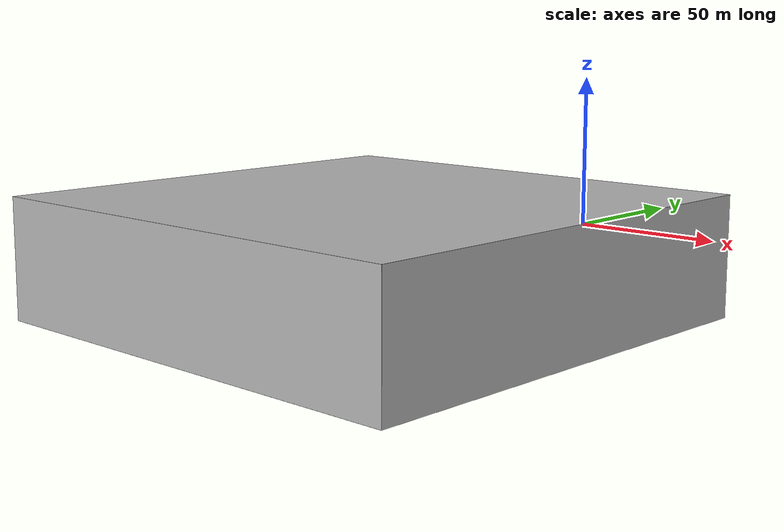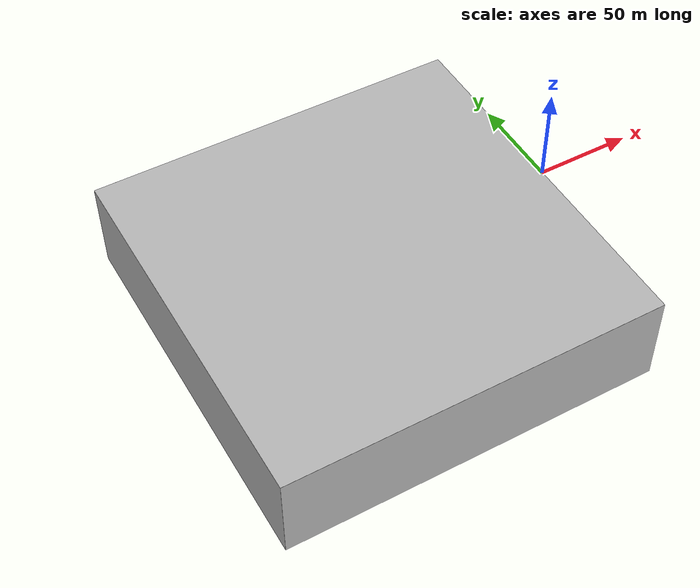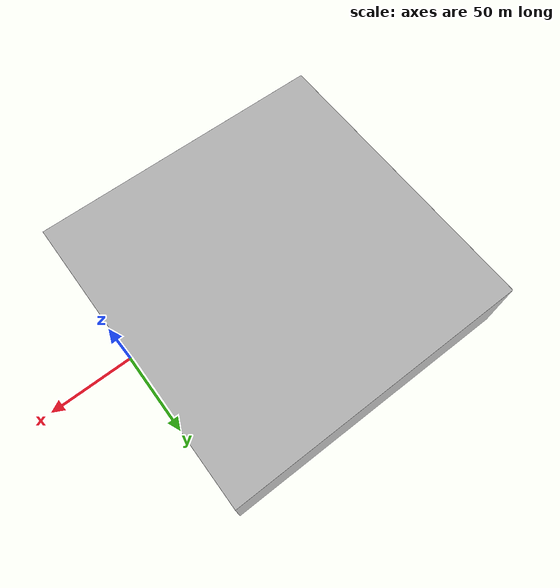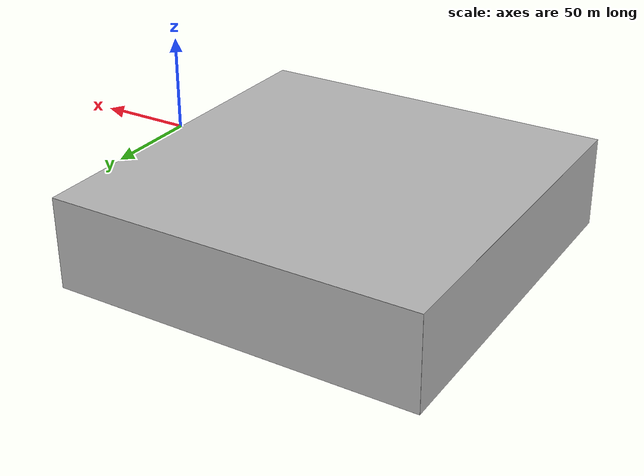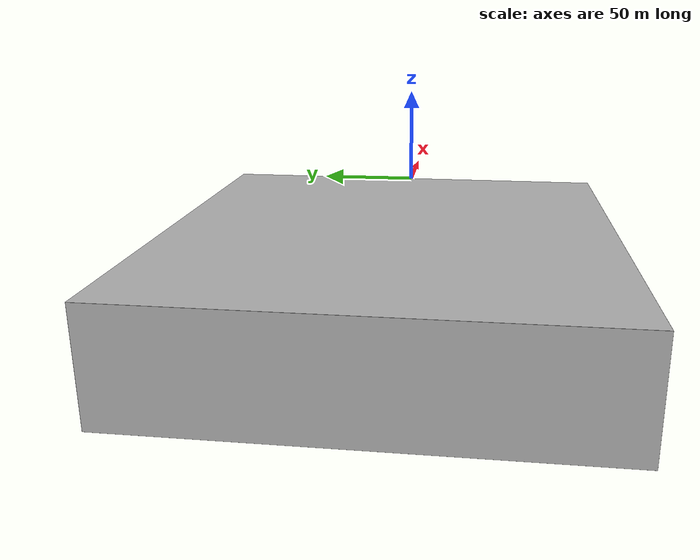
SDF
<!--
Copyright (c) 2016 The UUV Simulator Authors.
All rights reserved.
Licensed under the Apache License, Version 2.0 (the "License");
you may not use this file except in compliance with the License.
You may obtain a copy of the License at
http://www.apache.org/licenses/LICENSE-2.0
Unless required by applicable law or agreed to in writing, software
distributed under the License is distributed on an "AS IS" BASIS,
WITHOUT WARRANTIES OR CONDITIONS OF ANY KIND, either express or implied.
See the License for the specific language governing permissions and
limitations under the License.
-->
<?xml version="1.0" ?>
<sdf version="1.5">
  <model name="micro_ocean_box">
    <static>true</static>
    <link name="link">
      <visual name="ground">
        <cast_shadows>false</cast_shadows>
        <pose>-100 0 -50 0 0 0</pose>
        <geometry>
          <box>
            <size>200 200 .1</size>
          </box>
        </geometry>
        <material>
          <script>
            <uri>file://media/materials/scripts/sand.material</uri>
            <name>UUVSimulator/SandAndStones</name>
          </script>
        </material>
      </visual>

      <collision name="ground">
        <pose>-100 0 -50 0 0 0</pose>
        <geometry>
          <box>
            <size>200 200 .1</size>
          </box>
        </geometry>
      </collision>

      <visual name="surface">
        <cast_shadows>false</cast_shadows>
        <pose>-100 0 0 0 0 0</pose>
        <geometry>
          <box>
            <size>200 200 .1</size>
          </box>
        </geometry>
        <material>
          <script>
            <uri>file://media/materials/scripts/water.material</uri>
            <name>UUVSimulator/StaticDeepWater</name>
          </script>
        </material>
      </visual>

      <visual name="north">
        <cast_shadows>false</cast_shadows>
        <pose>0 0 -25 0 0 0</pose>
        <geometry>
          <box>
            <size>.1 200 50</size>
          </box>
        </geometry>
        <material>
          <script>
            <uri>file://media/materials/scripts/water.material</uri>
            <name>UUVSimulator/SeaWall</name>
          </script>
        </material>
      </visual>

      <visual name="south">
        <cast_shadows>false</cast_shadows>
        <pose>-200 0 -25 0 0 0</pose>
        <geometry>
          <box>
            <size>.1 200 50</size>
          </box>
        </geometry>
        <material>
          <script>
            <uri>file://media/materials/scripts/water.material</uri>
            <name>UUVSimulator/SeaWall</name>
          </script>
        </material>
      </visual>

      <visual name="east">
        <cast_shadows>false</cast_shadows>
        <pose>-100 -100 -25 0 0 0</pose>
        <geometry>
          <box>
            <size>200 .1 50</size>
          </box>
        </geometry>
        <material>
          <script>
            <uri>file://media/materials/scripts/water.material</uri>
            <name>UUVSimulator/SeaWall</name>
          </script>
        </material>
      </visual>

      <visual name="west">
        <cast_shadows>false</cast_shadows>
        <pose>-100 100 -25 0 0 0</pose>
        <geometry>
          <box>
            <size>200 .1 50</size>
          </box>
        </geometry>
        <material>
          <script>
            <uri>file://media/materials/scripts/water.material</uri>
            <name>UUVSimulator/SeaWall</name>
          </script>
        </material>
      </visual>
    </link>
  </model>
</sdf>
